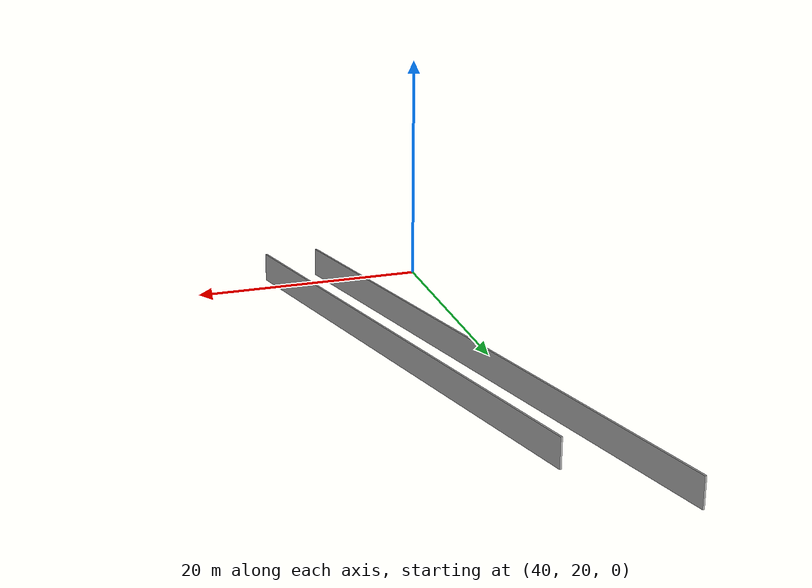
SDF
<?xml version="1.0" ?>
<sdf version="1.6">
  <model name="sps_0511">
    <pose frame="">0 0 0 0 -0 0</pose>
    <static>1</static>
    <self_collide>0</self_collide>
    <allow_auto_disable>0</allow_auto_disable>
    <link name="Wall100">
      <kinematic>0</kinematic>
      <gravity>1</gravity>
      <self_collide>0</self_collide>
      <collision name="collision">
        <geometry>
          <box>
            <size>43.5319 0.15 2.5</size>
          </box>
        </geometry>
        <pose frame="">0 0 0 0 -0 0</pose>
      </collision>
      <visual name="visual">
        <geometry>
          <box>
            <size>43.5319 0.15 2.5</size>
          </box>
        </geometry>
        <pose frame="">0 0 0 0 -0 0</pose>
        <cast_shadows>1</cast_shadows>
        <transparency>0.0</transparency>
      </visual>
      <pose frame="">47.7512 38.9251 1.25 0 -0 1.83122</pose>
    </link>
    <link name="Wall506">
      <kinematic>0</kinematic>
      <gravity>1</gravity>
      <self_collide>0</self_collide>
      <collision name="collision">
        <geometry>
          <box>
            <size>51.7448 0.15 2.5</size>
          </box>
        </geometry>
        <pose frame="">0 0 0 0 -0 0</pose>
      </collision>
      <visual name="visual">
        <geometry>
          <box>
            <size>51.7448 0.15 2.5</size>
          </box>
        </geometry>
        <pose frame="">0 0 0 0 -0 0</pose>
        <cast_shadows>1</cast_shadows>
        <transparency>0.0</transparency>
      </visual>
      <pose frame="">42.0358 42.8931 1.25 0 -0 1.83122</pose>
    </link>
  </model>
</sdf>
